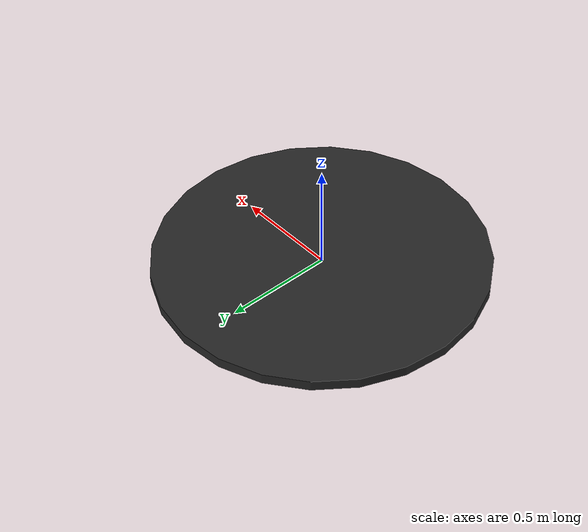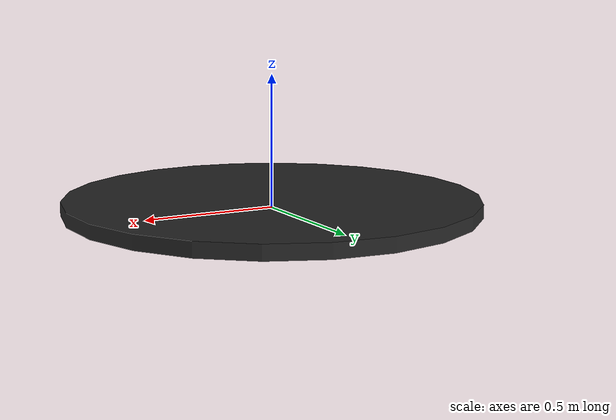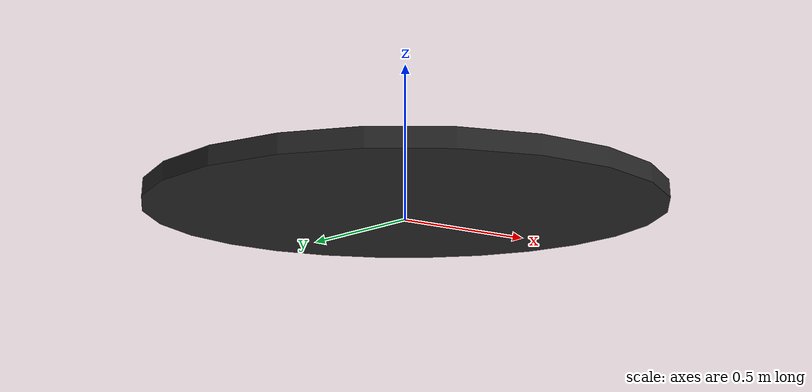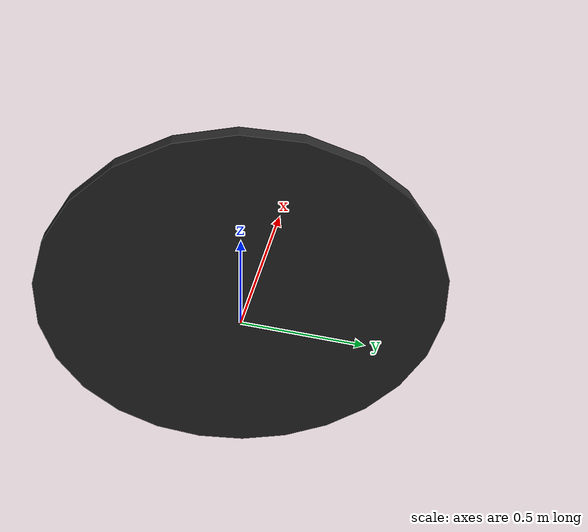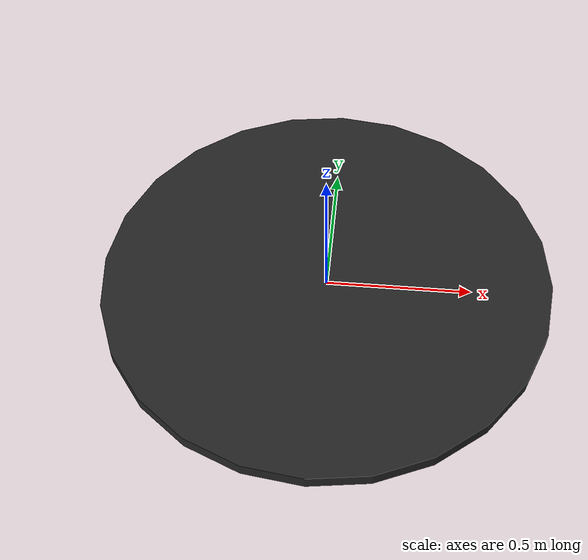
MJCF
<mujoco model="sumo_arena">

    <option timestep="0.002" gravity="0 0 -9.81"/>

    <default>
        <!-- ruedas -->
        <default class="wheel">
            <geom friction="1.2 0.01 0.01" condim="4"/>
        </default>

        <!-- cuerpo del robot -->
        <default class="robot_body">
            <geom friction="0.5 0.005 0.001"
            condim="4"
            solref="0.004 1"
            solimp="0.95 0.99 0.001"/>
        </default>

        <!-- suelo -->
        <default class="ground">
            <geom friction="0.9 0.005 0.001" condim="4"/>
        </default>
    </default>

    <worldbody>
        <!-- Luz -->
        <light pos="0 0 3" dir="0 0 -1" diffuse="1 1 1"/>
        <body name="arena" pos="0 0 0.03">
            <geom name="dohyo_surface"
            type="cylinder"
            size="0.77 0.025"
            class="ground"
            rgba="0.15 0.15 0.15 1"/>
        </body>
    </worldbody>
</mujoco>
